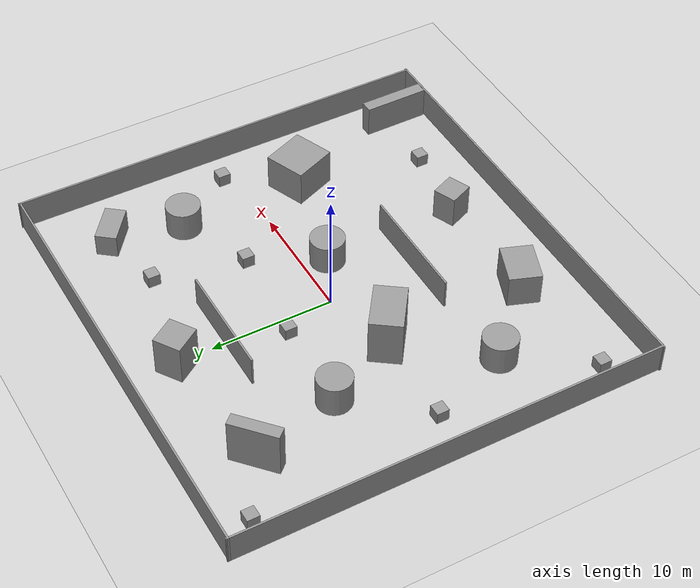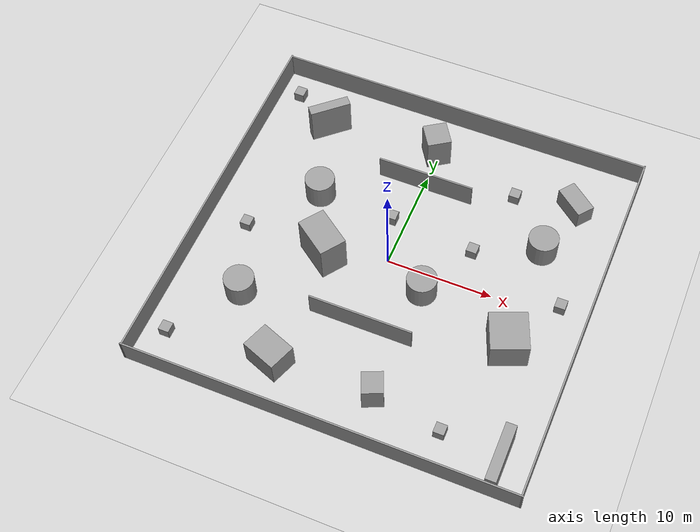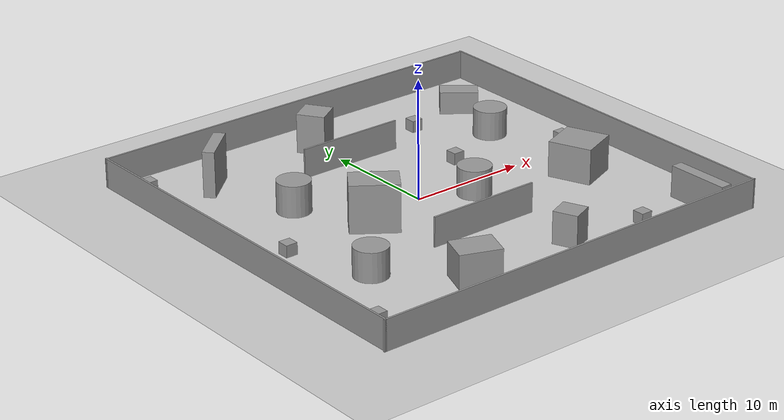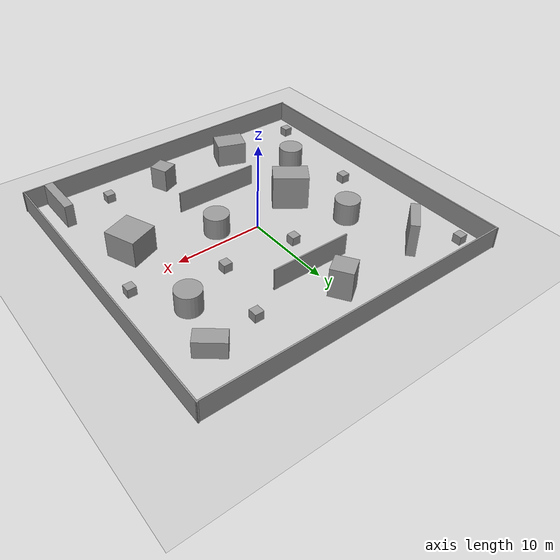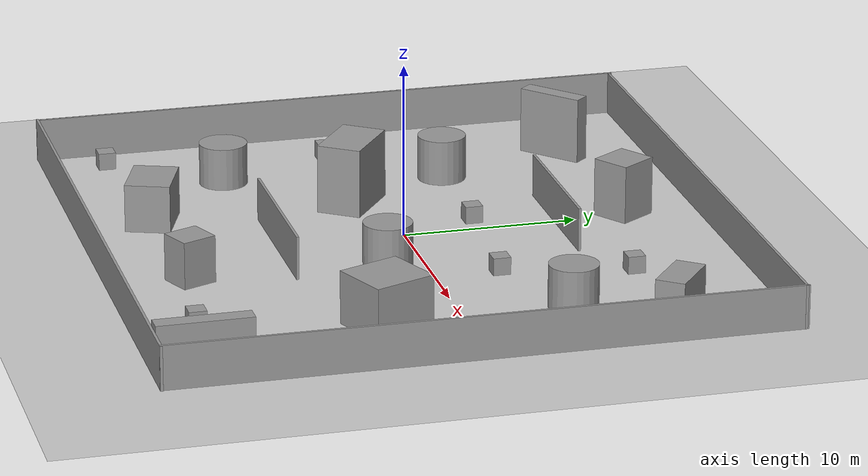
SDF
<sdf version="1.7">
 <world name="default">
  <light name="sun" type="directional">
   <pose>0 0 10 0 -0 0</pose>
   <diffuse>0.8 0.8 0.8 1</diffuse>
   <specular>0.2 0.2 0.2 1</specular>
   <attenuation>
    <range>1000</range>
    <constant>0.9</constant>
    <linear>0.01</linear>
    <quadratic>0.001</quadratic>
   </attenuation>
   <direction>-0.5 0.1 -0.9</direction>
   <spot><inner_angle>0</inner_angle><outer_angle>0</outer_angle><falloff>0</falloff></spot>
  </light>
  <model name="ground_plane">
   <static>1</static>
   <link name="link">
    <collision name="collision">
     <geometry><plane><normal>0 0 1</normal><size>100 100</size></plane></geometry>
     <surface><friction><ode><mu>100</mu><mu2>50</mu2></ode></friction></surface>
    </collision>
    <visual name="visual">
     <cast_shadows>0</cast_shadows>
     <geometry><plane><normal>0 0 1</normal><size>100 100</size></plane></geometry>
     <material>
      <script><uri>file://media/materials/scripts/gazebo.material</uri><name>Gazebo/Grey</name></script>
     </material>
    </visual>
   </link>
  </model>
  <gravity>0 0 -9.8</gravity>
  <magnetic_field>6e-06 2.3e-05 -4.2e-05</magnetic_field>
  <atmosphere type="adiabatic"/>
  <physics type="ode">
   <max_step_size>0.001</max_step_size>
   <real_time_factor>1</real_time_factor>
   <real_time_update_rate>1000</real_time_update_rate>
  </physics>
  <scene><ambient>0.4 0.4 0.4 1</ambient><background>0.7 0.7 0.7 1</background><shadows>1</shadows></scene>
  <audio><device>default</device></audio>
  <spherical_coordinates>
   <surface_model>EARTH_WGS84</surface_model>
   <latitude_deg>0</latitude_deg>
   <longitude_deg>0</longitude_deg>
   <elevation>0</elevation>
   <heading_deg>0</heading_deg>
  </spherical_coordinates>
  <model name="BIGCUBE">
   <pose>0.704631 -0.170746 0 0 -0 0</pose>
   <link name="Wall_2">
    <collision name="Wall_2_Collision">
     <geometry><box><size>36.5447 0.15 2.5</size></box></geometry>
     <pose>0 0 1.25 0 -0 0</pose>
    </collision>
    <visual name="Wall_2_Visual">
     <pose>0 0 1.25 0 -0 0</pose>
     <geometry><box><size>36.5447 0.15 2.5</size></box></geometry>
     <material>
      <script><uri>file://media/materials/scripts/gazebo.material</uri><name>Gazebo/Grey</name></script>
      <ambient>1 1 1 1</ambient>
     </material>
     <meta><layer>0</layer></meta>
    </visual>
    <pose>0.040512 17.4381 0 0 -0 3.14159</pose>
   </link>
   <link name="Wall_3">
    <collision name="Wall_3_Collision">
     <geometry><box><size>35.189 0.15 2.5</size></box></geometry>
     <pose>0 0 1.25 0 -0 0</pose>
    </collision>
    <visual name="Wall_3_Visual">
     <pose>0 0 1.25 0 -0 0</pose>
     <geometry><box><size>35.189 0.15 2.5</size></box></geometry>
     <material>
      <script><uri>file://media/materials/scripts/gazebo.material</uri><name>Gazebo/Grey</name></script>
      <ambient>1 1 1 1</ambient>
     </material>
     <meta><layer>0</layer></meta>
    </visual>
    <pose>-18.1507 -0 0 0 -0 -1.57045</pose>
   </link>
   <link name="Wall_4">
    <collision name="Wall_4_Collision">
     <geometry><box><size>36.5447 0.15 2.5</size></box></geometry>
     <pose>0 0 1.25 0 -0 0</pose>
    </collision>
    <visual name="Wall_4_Visual">
     <pose>0 0 1.25 0 -0 0</pose>
     <geometry><box><size>36.5447 0.15 2.5</size></box></geometry>
     <material>
      <script><uri>file://media/materials/scripts/gazebo.material</uri><name>Gazebo/Grey</name></script>
      <ambient>1 1 1 1</ambient>
     </material>
     <meta><layer>0</layer></meta>
    </visual>
    <pose>-0.040859 -17.5195 0 0 -0 0</pose>
   </link>
   <link name="Wall_5">
    <collision name="Wall_5_Collision">
     <geometry><box><size>35.1894 0.15 2.5</size></box></geometry>
     <pose>0 0 1.25 0 -0 0</pose>
    </collision>
    <visual name="Wall_5_Visual">
     <pose>0 0 1.25 0 -0 0</pose>
     <geometry><box><size>35.1894 0.15 2.5</size></box></geometry>
     <material>
      <script><uri>file://media/materials/scripts/gazebo.material</uri><name>Gazebo/Grey</name></script>
      <ambient>1 1 1 1</ambient>
     </material>
     <meta><layer>0</layer></meta>
    </visual>
    <pose>18.1565 -0 0 0 -0 1.56615</pose>
   </link>
   <link name="Wall_7">
    <collision name="Wall_7_Collision">
     <geometry><box><size>9.75 0.15 2.5</size></box></geometry>
     <pose>0 0 1.25 0 -0 0</pose>
    </collision>
    <visual name="Wall_7_Visual">
     <pose>0 0 1.25 0 -0 0</pose>
     <geometry><box><size>9.75 0.15 2.5</size></box></geometry>
     <material>
      <script><uri>file://media/materials/scripts/gazebo.material</uri><name>Gazebo/Grey</name></script>
      <ambient>1 1 1 1</ambient>
     </material>
     <meta><layer>0</layer></meta>
    </visual>
    <pose>-0.350818 -7.1514 0 0 -0 3.14159</pose>
   </link>
   <link name="Wall_9">
    <collision name="Wall_9_Collision">
     <geometry><box><size>9.25 0.15 2.5</size></box></geometry>
     <pose>0 0 1.25 0 -0 0</pose>
    </collision>
    <visual name="Wall_9_Visual">
     <pose>0 0 1.25 0 -0 0</pose>
     <geometry><box><size>9.25 0.15 2.5</size></box></geometry>
     <material>
      <script><uri>file://media/materials/scripts/gazebo.material</uri><name>Gazebo/Grey</name></script>
      <ambient>1 1 1 1</ambient>
     </material>
     <meta><layer>0</layer></meta>
    </visual>
    <pose>-0.52118 9.04135 0 0 -0 0</pose>
   </link>
   <static>1</static>
  </model>
  <model name="unit_cylinder">
   <pose>-8.72244 4.50828 1.31382 0 -0 -0.000149</pose>
   <link name="link">
    <inertial>
     <mass>1</mass>
     <inertia><ixx>0.145833</ixx><ixy>0</ixy><ixz>0</ixz><iyy>0.145833</iyy><iyz>0</iyz><izz>0.125</izz></inertia>
    </inertial>
    <collision name="collision">
     <geometry><cylinder><radius>1.40139</radius><length>2.62764</length></cylinder></geometry>
    </collision>
    <visual name="visual">
     <geometry><cylinder><radius>1.40139</radius><length>2.62764</length></cylinder></geometry>
     <material>
      <script><name>Gazebo/Grey</name><uri>file://media/materials/scripts/gazebo.material</uri></script>
     </material>
    </visual>
   </link>
  </model>
  <model name="unit_cylinder_clone">
   <pose>4.04453 -1.94257 1.22816 0 -0 -0.076003</pose>
   <link name="link">
    <inertial>
     <mass>1</mass>
     <inertia><ixx>0.145833</ixx><ixy>0</ixy><ixz>0</ixz><iyy>0.145833</iyy><iyz>0</iyz><izz>0.125</izz></inertia>
    </inertial>
    <collision name="collision">
     <geometry><cylinder><radius>1.40139</radius><length>2.45633</length></cylinder></geometry>
    </collision>
    <visual name="visual">
     <geometry><cylinder><radius>1.40139</radius><length>2.45633</length></cylinder></geometry>
     <material>
      <script><name>Gazebo/Grey</name><uri>file://media/materials/scripts/gazebo.material</uri></script>
     </material>
    </visual>
   </link>
  </model>
  <model name="unit_cylinder_clone_clone">
   <pose>12.71 6.19652 1.22816 0 0 -0.163094</pose>
   <link name="link">
    <inertial>
     <mass>1</mass>
     <inertia><ixx>0.145833</ixx><ixy>0</ixy><ixz>0</ixz><iyy>0.145833</iyy><iyz>0</iyz><izz>0.125</izz></inertia>
    </inertial>
    <collision name="collision">
     <geometry><cylinder><radius>1.40139</radius><length>2.45633</length></cylinder></geometry>
    </collision>
    <visual name="visual">
     <geometry><cylinder><radius>1.40139</radius><length>2.45633</length></cylinder></geometry>
     <material>
      <script><name>Gazebo/Grey</name><uri>file://media/materials/scripts/gazebo.material</uri></script>
     </material>
    </visual>
   </link>
  </model>
  <model name="unit_cylinder_clone_clone_0">
   <pose>-11.0334 -7.96944 1.22816 0 -0 -0.076003</pose>
   <link name="link">
    <inertial>
     <mass>1</mass>
     <inertia><ixx>0.145833</ixx><ixy>0</ixy><ixz>0</ixz><iyy>0.145833</iyy><iyz>0</iyz><izz>0.125</izz></inertia>
    </inertial>
    <collision name="collision">
     <geometry><cylinder><radius>1.40139</radius><length>2.45633</length></cylinder></geometry>
    </collision>
    <visual name="visual">
     <geometry><cylinder><radius>1.40139</radius><length>2.45633</length></cylinder></geometry>
     <material>
      <script><name>Gazebo/Grey</name><uri>file://media/materials/scripts/gazebo.material</uri></script>
     </material>
    </visual>
   </link>
  </model>
  <model name="unit_box">
   <pose>12.9813 -4.24966 1.51195 1e-06 0 0.383223</pose>
   <link name="link">
    <inertial>
     <mass>1</mass>
     <inertia>
      <ixx>0.166667</ixx>
      <ixy>0</ixy>
      <ixz>0</ixz>
      <iyy>0.166667</iyy>
      <iyz>0</iyz>
      <izz>0.166667</izz>
     </inertia>
    </inertial>
    <collision name="collision"><geometry><box><size>3.45401 3.66289 3.02391</size></box></geometry></collision>
    <visual name="visual">
     <geometry><box><size>3.45401 3.66289 3.02391</size></box></geometry>
     <material>
      <script><name>Gazebo/Grey</name><uri>file://media/materials/scripts/gazebo.material</uri></script>
     </material>
    </visual>
   </link>
  </model>
  <model name="unit_box_0">
   <pose>3.93521 -13.0621 1.35339 3e-06 -0 0.399436</pose>
   <link name="link">
    <inertial>
     <mass>1</mass>
     <inertia>
      <ixx>0.166667</ixx>
      <ixy>0</ixy>
      <ixz>0</ixz>
      <iyy>0.166667</iyy>
      <iyz>0</iyz>
      <izz>0.166667</izz>
     </inertia>
    </inertial>
    <collision name="collision"><geometry><box><size>1.92812 2.05883 2.70678</size></box></geometry></collision>
    <visual name="visual">
     <geometry><box><size>1.92812 2.05883 2.70678</size></box></geometry>
     <material>
      <script><name>Gazebo/Grey</name><uri>file://media/materials/scripts/gazebo.material</uri></script>
     </material>
    </visual>
   </link>
  </model>
  <model name="unit_box_1">
   <pose>-5.59335 -13.2591 1.38447 3e-06 -0 -0.356056</pose>
   <link name="link">
    <inertial>
     <mass>1</mass>
     <inertia>
      <ixx>0.166667</ixx>
      <ixy>0</ixy>
      <ixz>0</ixz>
      <iyy>0.166667</iyy>
      <iyz>0</iyz>
      <izz>0.166667</izz>
     </inertia>
    </inertial>
    <collision name="collision"><geometry><box><size>3.4164 2.58425 2.76894</size></box></geometry></collision>
    <visual name="visual">
     <geometry><box><size>3.4164 2.58425 2.76894</size></box></geometry>
     <material>
      <script><name>Gazebo/Grey</name><uri>file://media/materials/scripts/gazebo.material</uri></script>
     </material>
    </visual>
   </link>
  </model>
  <model name="unit_box_2">
   <pose>-5.70486 -1.62187 2.00199 -0 -1e-06 -0.620732</pose>
   <link name="link">
    <inertial>
     <mass>1</mass>
     <inertia>
      <ixx>0.166667</ixx>
      <ixy>0</ixy>
      <ixz>0</ixz>
      <iyy>0.166667</iyy>
      <iyz>0</iyz>
      <izz>0.166667</izz>
     </inertia>
    </inertial>
    <collision name="collision"><geometry><box><size>3.96478 2.58378 4.00399</size></box></geometry></collision>
    <visual name="visual">
     <geometry><box><size>3.96478 2.58378 4.00399</size></box></geometry>
     <material>
      <script><name>Gazebo/Grey</name><uri>file://media/materials/scripts/gazebo.material</uri></script>
     </material>
    </visual>
   </link>
  </model>
  <model name="unit_box_3">
   <pose>-10.9501 11.9088 1.93294 0 1e-06 0.732353</pose>
   <link name="link">
    <inertial>
     <mass>1</mass>
     <inertia>
      <ixx>0.166667</ixx>
      <ixy>0</ixy>
      <ixz>0</ixz>
      <iyy>0.166667</iyy>
      <iyz>0</iyz>
      <izz>0.166667</izz>
     </inertia>
    </inertial>
    <collision name="collision"><geometry><box><size>3.92558 0.980569 3.86588</size></box></geometry></collision>
    <visual name="visual">
     <geometry><box><size>3.92558 0.980569 3.86588</size></box></geometry>
     <material>
      <script><name>Gazebo/Grey</name><uri>file://media/materials/scripts/gazebo.material</uri></script>
     </material>
    </visual>
   </link>
  </model>
  <model name="unit_box_4">
   <pose>-0.281354 12.9489 1.68605 -2e-06 -0 0.588289</pose>
   <link name="link">
    <inertial>
     <mass>1</mass>
     <inertia>
      <ixx>0.166667</ixx>
      <ixy>0</ixy>
      <ixz>0</ixz>
      <iyy>0.166667</iyy>
      <iyz>0</iyz>
      <izz>0.166667</izz>
     </inertia>
    </inertial>
    <collision name="collision"><geometry><box><size>2.27533 2.38477 3.37209</size></box></geometry></collision>
    <visual name="visual">
     <geometry><box><size>2.27533 2.38477 3.37209</size></box></geometry>
     <material>
      <script><name>Gazebo/Grey</name><uri>file://media/materials/scripts/gazebo.material</uri></script>
     </material>
    </visual>
   </link>
  </model>
  <model name="unit_box_5">
   <pose>14.061 11.7881 0.964511 -1e-06 3e-06 -0.665639</pose>
   <link name="link">
    <inertial>
     <mass>1</mass>
     <inertia>
      <ixx>0.166667</ixx>
      <ixy>0</ixy>
      <ixz>0</ixz>
      <iyy>0.166667</iyy>
      <iyz>0</iyz>
      <izz>0.166667</izz>
     </inertia>
    </inertial>
    <collision name="collision"><geometry><box><size>3.22595 1.71231 1.92903</size></box></geometry></collision>
    <visual name="visual">
     <geometry><box><size>3.22595 1.71231 1.92903</size></box></geometry>
     <material>
      <script><name>Gazebo/Grey</name><uri>file://media/materials/scripts/gazebo.material</uri></script>
     </material>
    </visual>
   </link>
  </model>
  <model name="unit_box_6">
   <pose>16.0163 -14.8365 1.32035 -0.000408 2e-06 0.005033</pose>
   <link name="link">
    <inertial>
     <mass>1</mass>
     <inertia>
      <ixx>0.166667</ixx>
      <ixy>0</ixy>
      <ixz>0</ixz>
      <iyy>0.166667</iyy>
      <iyz>0</iyz>
      <izz>0.166667</izz>
     </inertia>
    </inertial>
    <collision name="collision"><geometry><box><size>1 5.34629 2.64287</size></box></geometry></collision>
    <visual name="visual">
     <geometry><box><size>1 5.34629 2.64287</size></box></geometry>
     <material>
      <script><name>Gazebo/Grey</name><uri>file://media/materials/scripts/gazebo.material</uri></script>
     </material>
    </visual>
   </link>
  </model>
  <model name="unit_box_7">
   <pose>10.4981 -14.105 0.499995 -1e-05 -0 -0</pose>
   <link name="link">
    <inertial>
     <mass>1</mass>
     <inertia>
      <ixx>0.166667</ixx>
      <ixy>0</ixy>
      <ixz>0</ixz>
      <iyy>0.166667</iyy>
      <iyz>0</iyz>
      <izz>0.166667</izz>
     </inertia>
    </inertial>
    <collision name="collision"><geometry><box><size>1 1 1</size></box></geometry></collision>
    <visual name="visual">
     <geometry><box><size>1 1 1</size></box></geometry>
     <material>
      <script><name>Gazebo/Grey</name><uri>file://media/materials/scripts/gazebo.material</uri></script>
     </material>
    </visual>
   </link>
  </model>
  <model name="unit_box_8">
   <pose>16.1486 1.14403 0.499995 0 1e-05 0</pose>
   <link name="link">
    <inertial>
     <mass>1</mass>
     <inertia>
      <ixx>0.166667</ixx>
      <ixy>0</ixy>
      <ixz>0</ixz>
      <iyy>0.166667</iyy>
      <iyz>0</iyz>
      <izz>0.166667</izz>
     </inertia>
    </inertial>
    <collision name="collision"><geometry><box><size>1 1 1</size></box></geometry></collision>
    <visual name="visual">
     <geometry><box><size>1 1 1</size></box></geometry>
     <material>
      <script><name>Gazebo/Grey</name><uri>file://media/materials/scripts/gazebo.material</uri></script>
     </material>
    </visual>
   </link>
  </model>
  <model name="unit_box_9">
   <pose>6.84832 3.69883 0.499995 -1e-05 -0 -0</pose>
   <link name="link">
    <inertial>
     <mass>1</mass>
     <inertia>
      <ixx>0.166667</ixx>
      <ixy>0</ixy>
      <ixz>0</ixz>
      <iyy>0.166667</iyy>
      <iyz>0</iyz>
      <izz>0.166667</izz>
     </inertia>
    </inertial>
    <collision name="collision"><geometry><box><size>1 1 1</size></box></geometry></collision>
    <visual name="visual">
     <geometry><box><size>1 1 1</size></box></geometry>
     <material>
      <script><name>Gazebo/Grey</name><uri>file://media/materials/scripts/gazebo.material</uri></script>
     </material>
    </visual>
   </link>
  </model>
  <model name="unit_box_10">
   <pose>-13.6144 -1.29337 0.499995 0 1e-05 0</pose>
   <link name="link">
    <inertial>
     <mass>1</mass>
     <inertia>
      <ixx>0.166667</ixx>
      <ixy>0</ixy>
      <ixz>0</ixz>
      <iyy>0.166667</iyy>
      <iyz>0</iyz>
      <izz>0.166667</izz>
     </inertia>
    </inertial>
    <collision name="collision"><geometry><box><size>1 1 1</size></box></geometry></collision>
    <visual name="visual">
     <geometry><box><size>1 1 1</size></box></geometry>
     <material>
      <script><name>Gazebo/Grey</name><uri>file://media/materials/scripts/gazebo.material</uri></script>
     </material>
    </visual>
   </link>
  </model>
  <model name="unit_box_11">
   <pose>-15.3161 -14.0838 0.499995 -1e-05 -0 -0</pose>
   <link name="link">
    <inertial>
     <mass>1</mass>
     <inertia>
      <ixx>0.166667</ixx>
      <ixy>0</ixy>
      <ixz>0</ixz>
      <iyy>0.166667</iyy>
      <iyz>0</iyz>
      <izz>0.166667</izz>
     </inertia>
    </inertial>
    <collision name="collision"><geometry><box><size>1 1 1</size></box></geometry></collision>
    <visual name="visual">
     <geometry><box><size>1 1 1</size></box></geometry>
     <material>
      <script><name>Gazebo/Grey</name><uri>file://media/materials/scripts/gazebo.material</uri></script>
     </material>
    </visual>
   </link>
  </model>
  <model name="unit_box_12">
   <pose>-15.3801 14.6219 0.499995 0 1e-05 0</pose>
   <link name="link">
    <inertial>
     <mass>1</mass>
     <inertia>
      <ixx>0.166667</ixx>
      <ixy>0</ixy>
      <ixz>0</ixz>
      <iyy>0.166667</iyy>
      <iyz>0</iyz>
      <izz>0.166667</izz>
     </inertia>
    </inertial>
    <collision name="collision"><geometry><box><size>1 1 1</size></box></geometry></collision>
    <visual name="visual">
     <geometry><box><size>1 1 1</size></box></geometry>
     <material>
      <script><name>Gazebo/Grey</name><uri>file://media/materials/scripts/gazebo.material</uri></script>
     </material>
    </visual>
   </link>
  </model>
  <model name="unit_box_13">
   <pose>8.46317 10.9372 0.499995 -1e-05 -0 0</pose>
   <link name="link">
    <inertial>
     <mass>1</mass>
     <inertia>
      <ixx>0.166667</ixx>
      <ixy>0</ixy>
      <ixz>0</ixz>
      <iyy>0.166667</iyy>
      <iyz>0</iyz>
      <izz>0.166667</izz>
     </inertia>
    </inertial>
    <collision name="collision"><geometry><box><size>1 1 1</size></box></geometry></collision>
    <visual name="visual">
     <geometry><box><size>1 1 1</size></box></geometry>
     <material>
      <script><name>Gazebo/Grey</name><uri>file://media/materials/scripts/gazebo.material</uri></script>
     </material>
    </visual>
   </link>
  </model>
  <model name="unit_box_14">
   <pose>-1.3617 4.3473 0.5 0 -0 0</pose>
   <link name="link">
    <inertial>
     <mass>1</mass>
     <inertia>
      <ixx>0.166667</ixx>
      <ixy>0</ixy>
      <ixz>0</ixz>
      <iyy>0.166667</iyy>
      <iyz>0</iyz>
      <izz>0.166667</izz>
     </inertia>
    </inertial>
    <collision name="collision"><geometry><box><size>1 1 1</size></box></geometry></collision>
    <visual name="visual">
     <geometry><box><size>1 1 1</size></box></geometry>
     <material>
      <script><name>Gazebo/Grey</name><uri>file://media/materials/scripts/gazebo.material</uri></script>
     </material>
    </visual>
   </link>
  </model>
 </world>
</sdf>
